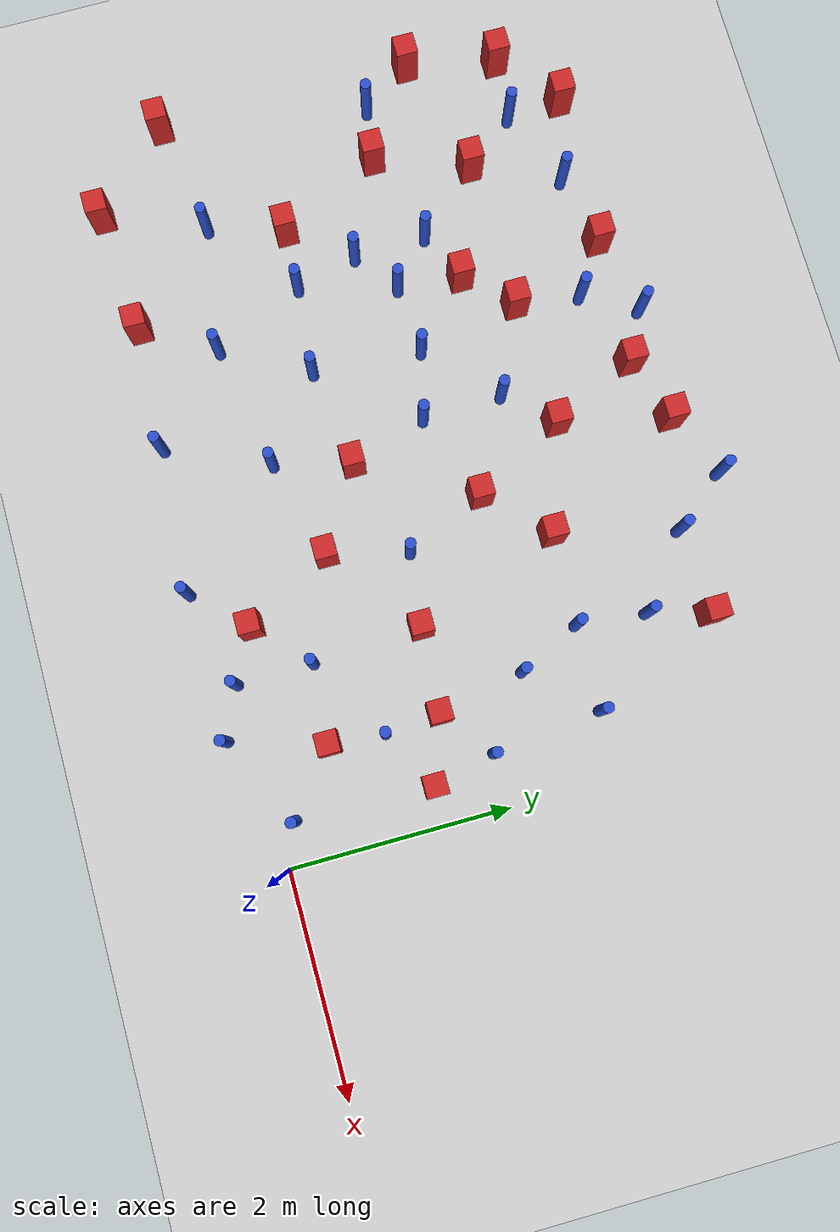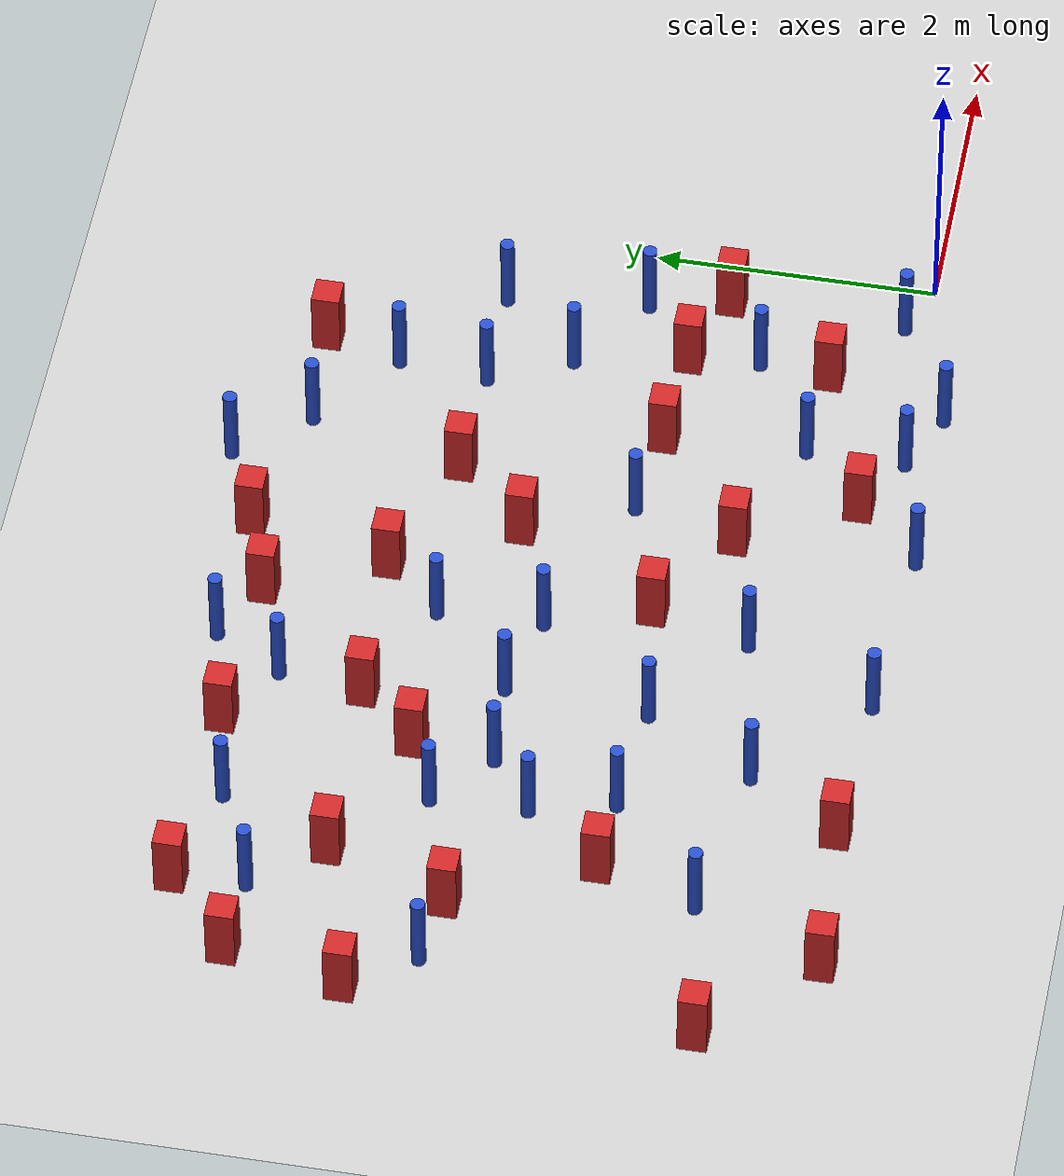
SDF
<sdf version="1.6">
 <world name="default">
  <model name="ground_plane">
   <static>1</static>
   <link name="link">
    <collision name="collision">
     <geometry><plane><normal>0 0 1</normal><size>100 100</size></plane></geometry>
     <surface><friction><ode><mu>100</mu><mu2>50</mu2></ode></friction></surface>
    </collision>
    <visual name="visual">
     <cast_shadows>0</cast_shadows>
     <geometry><plane><normal>0 0 1</normal><size>100 100</size></plane></geometry>
     <material>
      <ambient>1.0 1.0 1.0 1.0</ambient>
      <diffuse>0.8 0.8 0.8 1.0</diffuse>
      <specular>0.01 0.01 0.01 1.000000</specular>
     </material>
    </visual>
   </link>
  </model>
  <model name="square_post_obstacle4">
   <static>true</static>
   <pose>-6.11988198631 2.40066412992 8.22691968438e-08 7.2212513382e-06 -7.54495500217e-07 2.29674213826e-05</pose>
   <link name="link">
    <pose>0 0 0.25 0 -0 0</pose>
    <inertial>
     <mass>100</mass>
     <inertia>
      <ixx>0.166667</ixx>
      <ixy>0</ixy>
      <ixz>0</ixz>
      <iyy>0.166667</iyy>
      <iyz>0</iyz>
      <izz>0.166667</izz>
     </inertia>
    </inertial>
    <collision name="collision"><geometry><box><size>.2 .2 .5</size></box></geometry></collision>
    <visual name="visual">
     <geometry><box><size>.2 .2 .5</size></box></geometry>
     <material>
      <script><name>Gazebo/Red</name><uri>file://media/materials/scripts/gazebo.material</uri></script>
     </material>
    </visual>
   </link>
  </model>
  <model name="pole_obstacle4">
   <static>true</static>
   <pose>-1.11285080218 2.41253646626 2.88873142074e-08 -9.90536689791e-09 4.6021994899e-07 -1.20965994959e-07</pose>
   <link name="link">
    <pose>0 0 0.3 0 -0 0</pose>
    <inertial>
     <mass>1</mass>
     <inertia><ixx>0.145833</ixx><ixy>0</ixy><ixz>0</ixz><iyy>0.145833</iyy><iyz>0</iyz><izz>0.125</izz></inertia>
    </inertial>
    <collision name="collision">
     <geometry><cylinder><radius>0.05</radius><length>.6</length></cylinder></geometry>
    </collision>
    <visual name="visual">
     <geometry><cylinder><radius>0.05</radius><length>.6</length></cylinder></geometry>
     <material>
      <script><name>Gazebo/Blue</name><uri>file://media/materials/scripts/gazebo.material</uri></script>
     </material>
    </visual>
   </link>
  </model>
  <model name="square_post_obstacle13">
   <static>true</static>
   <pose>-6.22304500076 -0.177315337008 8.22691968438e-08 7.2212513382e-06 -7.54495500217e-07 2.29674213826e-05</pose>
   <link name="link">
    <pose>0 0 0.25 0 -0 0</pose>
    <inertial>
     <mass>100</mass>
     <inertia>
      <ixx>0.166667</ixx>
      <ixy>0</ixy>
      <ixz>0</ixz>
      <iyy>0.166667</iyy>
      <iyz>0</iyz>
      <izz>0.166667</izz>
     </inertia>
    </inertial>
    <collision name="collision"><geometry><box><size>.2 .2 .5</size></box></geometry></collision>
    <visual name="visual">
     <geometry><box><size>.2 .2 .5</size></box></geometry>
     <material>
      <script><name>Gazebo/Red</name><uri>file://media/materials/scripts/gazebo.material</uri></script>
     </material>
    </visual>
   </link>
  </model>
  <model name="pole_obstacle9">
   <static>true</static>
   <pose>-1.67176897016 0.657814123121 2.88873142074e-08 -9.90536689692e-09 4.60219948993e-07 -1.20965994958e-07</pose>
   <link name="link">
    <pose>0 0 0.3 0 -0 0</pose>
    <inertial>
     <mass>1</mass>
     <inertia><ixx>0.145833</ixx><ixy>0</ixy><ixz>0</ixz><iyy>0.145833</iyy><iyz>0</iyz><izz>0.125</izz></inertia>
    </inertial>
    <collision name="collision">
     <geometry><cylinder><radius>0.05</radius><length>.6</length></cylinder></geometry>
    </collision>
    <visual name="visual">
     <geometry><cylinder><radius>0.05</radius><length>.6</length></cylinder></geometry>
     <material>
      <script><name>Gazebo/Blue</name><uri>file://media/materials/scripts/gazebo.material</uri></script>
     </material>
    </visual>
   </link>
  </model>
  <model name="pole_obstacle12">
   <static>true</static>
   <pose>-0.907290829122 1.1120507085 2.88873142074e-08 -9.90536689855e-09 4.60219948989e-07 -1.20965994962e-07</pose>
   <link name="link">
    <pose>0 0 0.3 0 -0 0</pose>
    <inertial>
     <mass>1</mass>
     <inertia><ixx>0.145833</ixx><ixy>0</ixy><ixz>0</ixz><iyy>0.145833</iyy><iyz>0</iyz><izz>0.125</izz></inertia>
    </inertial>
    <collision name="collision">
     <geometry><cylinder><radius>0.05</radius><length>.6</length></cylinder></geometry>
    </collision>
    <visual name="visual">
     <geometry><cylinder><radius>0.05</radius><length>.6</length></cylinder></geometry>
     <material>
      <script><name>Gazebo/Blue</name><uri>file://media/materials/scripts/gazebo.material</uri></script>
     </material>
    </visual>
   </link>
  </model>
  <model name="pole_obstacle15">
   <static>true</static>
   <pose>-6.18658742301 3.74854576818 2.88873142074e-08 -9.90536690245e-09 4.6021994898e-07 -1.20965994966e-07</pose>
   <link name="link">
    <pose>0 0 0.3 0 -0 0</pose>
    <inertial>
     <mass>1</mass>
     <inertia><ixx>0.145833</ixx><ixy>0</ixy><ixz>0</ixz><iyy>0.145833</iyy><iyz>0</iyz><izz>0.125</izz></inertia>
    </inertial>
    <collision name="collision">
     <geometry><cylinder><radius>0.05</radius><length>.6</length></cylinder></geometry>
    </collision>
    <visual name="visual">
     <geometry><cylinder><radius>0.05</radius><length>.6</length></cylinder></geometry>
     <material>
      <script><name>Gazebo/Blue</name><uri>file://media/materials/scripts/gazebo.material</uri></script>
     </material>
    </visual>
   </link>
  </model>
  <model name="pole_obstacle23">
   <static>true</static>
   <pose>-4.67680809581 0.555590162463 2.88873142074e-08 -9.90536689837e-09 4.60219948989e-07 -1.2096599496e-07</pose>
   <link name="link">
    <pose>0 0 0.3 0 -0 0</pose>
    <inertial>
     <mass>1</mass>
     <inertia><ixx>0.145833</ixx><ixy>0</ixy><ixz>0</ixz><iyy>0.145833</iyy><iyz>0</iyz><izz>0.125</izz></inertia>
    </inertial>
    <collision name="collision">
     <geometry><cylinder><radius>0.05</radius><length>.6</length></cylinder></geometry>
    </collision>
    <visual name="visual">
     <geometry><cylinder><radius>0.05</radius><length>.6</length></cylinder></geometry>
     <material>
      <script><name>Gazebo/Blue</name><uri>file://media/materials/scripts/gazebo.material</uri></script>
     </material>
    </visual>
   </link>
  </model>
  <model name="pole_obstacle25">
   <static>true</static>
   <pose>-0.604797885912 2.98127101878 2.88873142074e-08 -9.90536689636e-09 4.60219948994e-07 -1.20965994958e-07</pose>
   <link name="link">
    <pose>0 0 0.3 0 -0 0</pose>
    <inertial>
     <mass>1</mass>
     <inertia><ixx>0.145833</ixx><ixy>0</ixy><ixz>0</ixz><iyy>0.145833</iyy><iyz>0</iyz><izz>0.125</izz></inertia>
    </inertial>
    <collision name="collision">
     <geometry><cylinder><radius>0.05</radius><length>.6</length></cylinder></geometry>
    </collision>
    <visual name="visual">
     <geometry><cylinder><radius>0.05</radius><length>.6</length></cylinder></geometry>
     <material>
      <script><name>Gazebo/Blue</name><uri>file://media/materials/scripts/gazebo.material</uri></script>
     </material>
    </visual>
   </link>
  </model>
  <model name="pole_obstacle32">
   <static>true</static>
   <pose>-2.5596887049 -0.253611967014 2.88873142074e-08 -9.90536692022e-09 4.60219948938e-07 -1.20965994984e-07</pose>
   <link name="link">
    <pose>0 0 0.3 0 -0 0</pose>
    <inertial>
     <mass>1</mass>
     <inertia><ixx>0.145833</ixx><ixy>0</ixy><ixz>0</ixz><iyy>0.145833</iyy><iyz>0</iyz><izz>0.125</izz></inertia>
    </inertial>
    <collision name="collision">
     <geometry><cylinder><radius>0.05</radius><length>.6</length></cylinder></geometry>
    </collision>
    <visual name="visual">
     <geometry><cylinder><radius>0.05</radius><length>.6</length></cylinder></geometry>
     <material>
      <script><name>Gazebo/Blue</name><uri>file://media/materials/scripts/gazebo.material</uri></script>
     </material>
    </visual>
   </link>
  </model>
  <model name="pole_obstacle33">
   <static>true</static>
   <pose>-4.82542862277 2.29827292195 2.88873142074e-08 -9.90536690245e-09 4.6021994898e-07 -1.20965994966e-07</pose>
   <link name="link">
    <pose>0 0 0.3 0 -0 0</pose>
    <inertial>
     <mass>1</mass>
     <inertia><ixx>0.145833</ixx><ixy>0</ixy><ixz>0</ixz><iyy>0.145833</iyy><iyz>0</iyz><izz>0.125</izz></inertia>
    </inertial>
    <collision name="collision">
     <geometry><cylinder><radius>0.05</radius><length>.6</length></cylinder></geometry>
    </collision>
    <visual name="visual">
     <geometry><cylinder><radius>0.05</radius><length>.6</length></cylinder></geometry>
     <material>
      <script><name>Gazebo/Blue</name><uri>file://media/materials/scripts/gazebo.material</uri></script>
     </material>
    </visual>
   </link>
  </model>
  <model name="square_post_obstacle35">
   <static>true</static>
   <pose>-4.78033726926 2.87956530869 8.22691968438e-08 7.2212513382e-06 -7.54495500217e-07 2.29674213826e-05</pose>
   <link name="link">
    <pose>0 0 0.25 0 -0 0</pose>
    <inertial>
     <mass>100</mass>
     <inertia>
      <ixx>0.166667</ixx>
      <ixy>0</ixy>
      <ixz>0</ixz>
      <iyy>0.166667</iyy>
      <iyz>0</iyz>
      <izz>0.166667</izz>
     </inertia>
    </inertial>
    <collision name="collision"><geometry><box><size>.2 .2 .5</size></box></geometry></collision>
    <visual name="visual">
     <geometry><box><size>.2 .2 .5</size></box></geometry>
     <material>
      <script><name>Gazebo/Red</name><uri>file://media/materials/scripts/gazebo.material</uri></script>
     </material>
    </visual>
   </link>
  </model>
  <model name="pole_obstacle42">
   <static>true</static>
   <pose>-3.58616309249 2.93079925929 2.88873142074e-08 -9.90536689597e-09 4.60219948995e-07 -1.20965994957e-07</pose>
   <link name="link">
    <pose>0 0 0.3 0 -0 0</pose>
    <inertial>
     <mass>1</mass>
     <inertia><ixx>0.145833</ixx><ixy>0</ixy><ixz>0</ixz><iyy>0.145833</iyy><iyz>0</iyz><izz>0.125</izz></inertia>
    </inertial>
    <collision name="collision">
     <geometry><cylinder><radius>0.05</radius><length>.6</length></cylinder></geometry>
    </collision>
    <visual name="visual">
     <geometry><cylinder><radius>0.05</radius><length>.6</length></cylinder></geometry>
     <material>
      <script><name>Gazebo/Blue</name><uri>file://media/materials/scripts/gazebo.material</uri></script>
     </material>
    </visual>
   </link>
  </model>
  <model name="square_post_obstacle43">
   <static>true</static>
   <pose>-2.59165380319 1.01698078528 8.22691968438e-08 7.2212513382e-06 -7.54495500217e-07 2.29674213826e-05</pose>
   <link name="link">
    <pose>0 0 0.25 0 -0 0</pose>
    <inertial>
     <mass>100</mass>
     <inertia>
      <ixx>0.166667</ixx>
      <ixy>0</ixy>
      <ixz>0</ixz>
      <iyy>0.166667</iyy>
      <iyz>0</iyz>
      <izz>0.166667</izz>
     </inertia>
    </inertial>
    <collision name="collision"><geometry><box><size>.2 .2 .5</size></box></geometry></collision>
    <visual name="visual">
     <geometry><box><size>.2 .2 .5</size></box></geometry>
     <material>
      <script><name>Gazebo/Red</name><uri>file://media/materials/scripts/gazebo.material</uri></script>
     </material>
    </visual>
   </link>
  </model>
  <model name="pole_obstacle47">
   <static>true</static>
   <pose>-3.50604612175 0.763758230596 2.88873142074e-08 -9.90536689285e-09 4.60219949002e-07 -1.20965994953e-07</pose>
   <link name="link">
    <pose>0 0 0.3 0 -0 0</pose>
    <inertial>
     <mass>1</mass>
     <inertia><ixx>0.145833</ixx><ixy>0</ixy><ixz>0</ixz><iyy>0.145833</iyy><iyz>0</iyz><izz>0.125</izz></inertia>
    </inertial>
    <collision name="collision">
     <geometry><cylinder><radius>0.05</radius><length>.6</length></cylinder></geometry>
    </collision>
    <visual name="visual">
     <geometry><cylinder><radius>0.05</radius><length>.6</length></cylinder></geometry>
     <material>
      <script><name>Gazebo/Blue</name><uri>file://media/materials/scripts/gazebo.material</uri></script>
     </material>
    </visual>
   </link>
  </model>
  <model name="square_post_obstacle51">
   <static>true</static>
   <pose>-2.13622421256 0.21127868371 8.22691968438e-08 7.2212513382e-06 -7.54495500217e-07 2.29674213826e-05</pose>
   <link name="link">
    <pose>0 0 0.25 0 -0 0</pose>
    <inertial>
     <mass>100</mass>
     <inertia>
      <ixx>0.166667</ixx>
      <ixy>0</ixy>
      <ixz>0</ixz>
      <iyy>0.166667</iyy>
      <iyz>0</iyz>
      <izz>0.166667</izz>
     </inertia>
    </inertial>
    <collision name="collision"><geometry><box><size>.2 .2 .5</size></box></geometry></collision>
    <visual name="visual">
     <geometry><box><size>.2 .2 .5</size></box></geometry>
     <material>
      <script><name>Gazebo/Red</name><uri>file://media/materials/scripts/gazebo.material</uri></script>
     </material>
    </visual>
   </link>
  </model>
  <model name="square_post_obstacle54">
   <static>true</static>
   <pose>-3.59385499015 4.14736343509 8.22691968438e-08 7.2212513382e-06 -7.54495500217e-07 2.29674213826e-05</pose>
   <link name="link">
    <pose>0 0 0.25 0 -0 0</pose>
    <inertial>
     <mass>100</mass>
     <inertia>
      <ixx>0.166667</ixx>
      <ixy>0</ixy>
      <ixz>0</ixz>
      <iyy>0.166667</iyy>
      <iyz>0</iyz>
      <izz>0.166667</izz>
     </inertia>
    </inertial>
    <collision name="collision"><geometry><box><size>.2 .2 .5</size></box></geometry></collision>
    <visual name="visual">
     <geometry><box><size>.2 .2 .5</size></box></geometry>
     <material>
      <script><name>Gazebo/Red</name><uri>file://media/materials/scripts/gazebo.material</uri></script>
     </material>
    </visual>
   </link>
  </model>
  <model name="square_post_obstacle64">
   <static>true</static>
   <pose>-1.18157547276 4.16491757704 8.22691968438e-08 7.2212513382e-06 -7.54495500217e-07 2.29674213826e-05</pose>
   <link name="link">
    <pose>0 0 0.25 0 -0 0</pose>
    <inertial>
     <mass>100</mass>
     <inertia>
      <ixx>0.166667</ixx>
      <ixy>0</ixy>
      <ixz>0</ixz>
      <iyy>0.166667</iyy>
      <iyz>0</iyz>
      <izz>0.166667</izz>
     </inertia>
    </inertial>
    <collision name="collision"><geometry><box><size>.2 .2 .5</size></box></geometry></collision>
    <visual name="visual">
     <geometry><box><size>.2 .2 .5</size></box></geometry>
     <material>
      <script><name>Gazebo/Red</name><uri>file://media/materials/scripts/gazebo.material</uri></script>
     </material>
    </visual>
   </link>
  </model>
  <model name="pole_obstacle64">
   <static>true</static>
   <pose>-5.45129892534 4.05668576479 2.88873142074e-08 -9.90536690842e-09 4.60219948965e-07 -1.20965994976e-07</pose>
   <link name="link">
    <pose>0 0 0.3 0 -0 0</pose>
    <inertial>
     <mass>1</mass>
     <inertia><ixx>0.145833</ixx><ixy>0</ixy><ixz>0</ixz><iyy>0.145833</iyy><iyz>0</iyz><izz>0.125</izz></inertia>
    </inertial>
    <collision name="collision">
     <geometry><cylinder><radius>0.05</radius><length>.6</length></cylinder></geometry>
    </collision>
    <visual name="visual">
     <geometry><cylinder><radius>0.05</radius><length>.6</length></cylinder></geometry>
     <material>
      <script><name>Gazebo/Blue</name><uri>file://media/materials/scripts/gazebo.material</uri></script>
     </material>
    </visual>
   </link>
  </model>
  <model name="square_post_obstacle72">
   <static>true</static>
   <pose>-6.94956865934 0.557874662591 8.22691968438e-08 7.2212513382e-06 -7.54495500217e-07 2.29674213826e-05</pose>
   <link name="link">
    <pose>0 0 0.25 0 -0 0</pose>
    <inertial>
     <mass>100</mass>
     <inertia>
      <ixx>0.166667</ixx>
      <ixy>0</ixy>
      <ixz>0</ixz>
      <iyy>0.166667</iyy>
      <iyz>0</iyz>
      <izz>0.166667</izz>
     </inertia>
    </inertial>
    <collision name="collision"><geometry><box><size>.2 .2 .5</size></box></geometry></collision>
    <visual name="visual">
     <geometry><box><size>.2 .2 .5</size></box></geometry>
     <material>
      <script><name>Gazebo/Red</name><uri>file://media/materials/scripts/gazebo.material</uri></script>
     </material>
    </visual>
   </link>
  </model>
  <model name="square_post_obstacle75">
   <static>true</static>
   <pose>-1.73539912772 1.65769515468 8.22691968438e-08 7.2212513382e-06 -7.54495500217e-07 2.29674213826e-05</pose>
   <link name="link">
    <pose>0 0 0.25 0 -0 0</pose>
    <inertial>
     <mass>100</mass>
     <inertia>
      <ixx>0.166667</ixx>
      <ixy>0</ixy>
      <ixz>0</ixz>
      <iyy>0.166667</iyy>
      <iyz>0</iyz>
      <izz>0.166667</izz>
     </inertia>
    </inertial>
    <collision name="collision"><geometry><box><size>.2 .2 .5</size></box></geometry></collision>
    <visual name="visual">
     <geometry><box><size>.2 .2 .5</size></box></geometry>
     <material>
      <script><name>Gazebo/Red</name><uri>file://media/materials/scripts/gazebo.material</uri></script>
     </material>
    </visual>
   </link>
  </model>
  <model name="pole_obstacle70">
   <static>true</static>
   <pose>-1.32333191586 3.62391716327 2.88873142074e-08 -9.90536689791e-09 4.6021994899e-07 -1.20965994959e-07</pose>
   <link name="link">
    <pose>0 0 0.3 0 -0 0</pose>
    <inertial>
     <mass>1</mass>
     <inertia><ixx>0.145833</ixx><ixy>0</ixy><ixz>0</ixz><iyy>0.145833</iyy><iyz>0</iyz><izz>0.125</izz></inertia>
    </inertial>
    <collision name="collision">
     <geometry><cylinder><radius>0.05</radius><length>.6</length></cylinder></geometry>
    </collision>
    <visual name="visual">
     <geometry><cylinder><radius>0.05</radius><length>.6</length></cylinder></geometry>
     <material>
      <script><name>Gazebo/Blue</name><uri>file://media/materials/scripts/gazebo.material</uri></script>
     </material>
    </visual>
   </link>
  </model>
  <model name="pole_obstacle81">
   <static>true</static>
   <pose>-3.55907121232 2.18631689489 2.88873142074e-08 -9.90536689597e-09 4.60219948995e-07 -1.20965994957e-07</pose>
   <link name="link">
    <pose>0 0 0.3 0 -0 0</pose>
    <inertial>
     <mass>1</mass>
     <inertia><ixx>0.145833</ixx><ixy>0</ixy><ixz>0</ixz><iyy>0.145833</iyy><iyz>0</iyz><izz>0.125</izz></inertia>
    </inertial>
    <collision name="collision">
     <geometry><cylinder><radius>0.05</radius><length>.6</length></cylinder></geometry>
    </collision>
    <visual name="visual">
     <geometry><cylinder><radius>0.05</radius><length>.6</length></cylinder></geometry>
     <material>
      <script><name>Gazebo/Blue</name><uri>file://media/materials/scripts/gazebo.material</uri></script>
     </material>
    </visual>
   </link>
  </model>
  <model name="square_post_obstacle80">
   <static>true</static>
   <pose>-6.95029578338 2.94776816849 8.22691968438e-08 7.2212513382e-06 -7.54495500217e-07 2.29674213826e-05</pose>
   <link name="link">
    <pose>0 0 0.25 0 -0 0</pose>
    <inertial>
     <mass>100</mass>
     <inertia>
      <ixx>0.166667</ixx>
      <ixy>0</ixy>
      <ixz>0</ixz>
      <iyy>0.166667</iyy>
      <iyz>0</iyz>
      <izz>0.166667</izz>
     </inertia>
    </inertial>
    <collision name="collision"><geometry><box><size>.2 .2 .5</size></box></geometry></collision>
    <visual name="visual">
     <geometry><box><size>.2 .2 .5</size></box></geometry>
     <material>
      <script><name>Gazebo/Red</name><uri>file://media/materials/scripts/gazebo.material</uri></script>
     </material>
    </visual>
   </link>
  </model>
  <model name="pole_obstacle87">
   <static>true</static>
   <pose>-5.24283808344 2.66956436762 2.88873142074e-08 -9.90536690245e-09 4.6021994898e-07 -1.20965994966e-07</pose>
   <link name="link">
    <pose>0 0 0.3 0 -0 0</pose>
    <inertial>
     <mass>1</mass>
     <inertia><ixx>0.145833</ixx><ixy>0</ixy><ixz>0</ixz><iyy>0.145833</iyy><iyz>0</iyz><izz>0.125</izz></inertia>
    </inertial>
    <collision name="collision">
     <geometry><cylinder><radius>0.05</radius><length>.6</length></cylinder></geometry>
    </collision>
    <visual name="visual">
     <geometry><cylinder><radius>0.05</radius><length>.6</length></cylinder></geometry>
     <material>
      <script><name>Gazebo/Blue</name><uri>file://media/materials/scripts/gazebo.material</uri></script>
     </material>
    </visual>
   </link>
  </model>
  <model name="pole_obstacle98">
   <static>true</static>
   <pose>-1.96305457123 4.12169609784 2.88873142074e-08 -9.90536689721e-09 4.60219948992e-07 -1.20965994958e-07</pose>
   <link name="link">
    <pose>0 0 0.3 0 -0 0</pose>
    <inertial>
     <mass>1</mass>
     <inertia><ixx>0.145833</ixx><ixy>0</ixy><ixz>0</ixz><iyy>0.145833</iyy><iyz>0</iyz><izz>0.125</izz></inertia>
    </inertial>
    <collision name="collision">
     <geometry><cylinder><radius>0.05</radius><length>.6</length></cylinder></geometry>
    </collision>
    <visual name="visual">
     <geometry><cylinder><radius>0.05</radius><length>.6</length></cylinder></geometry>
     <material>
      <script><name>Gazebo/Blue</name><uri>file://media/materials/scripts/gazebo.material</uri></script>
     </material>
    </visual>
   </link>
  </model>
  <model name="pole_obstacle99">
   <static>true</static>
   <pose>-0.391172334253 0.158182697802 2.88873142074e-08 -9.90536690071e-09 4.60219948984e-07 -1.20965994964e-07</pose>
   <link name="link">
    <pose>0 0 0.3 0 -0 0</pose>
    <inertial>
     <mass>1</mass>
     <inertia><ixx>0.145833</ixx><ixy>0</ixy><ixz>0</ixz><iyy>0.145833</iyy><iyz>0</iyz><izz>0.125</izz></inertia>
    </inertial>
    <collision name="collision">
     <geometry><cylinder><radius>0.05</radius><length>.6</length></cylinder></geometry>
    </collision>
    <visual name="visual">
     <geometry><cylinder><radius>0.05</radius><length>.6</length></cylinder></geometry>
     <material>
      <script><name>Gazebo/Blue</name><uri>file://media/materials/scripts/gazebo.material</uri></script>
     </material>
    </visual>
   </link>
  </model>
  <model name="square_post_obstacle90">
   <static>true</static>
   <pose>-6.77682605143 3.78342824016 8.22691968438e-08 7.2212513382e-06 -7.54495500217e-07 2.29674213826e-05</pose>
   <link name="link">
    <pose>0 0 0.25 0 -0 0</pose>
    <inertial>
     <mass>100</mass>
     <inertia>
      <ixx>0.166667</ixx>
      <ixy>0</ixy>
      <ixz>0</ixz>
      <iyy>0.166667</iyy>
      <iyz>0</iyz>
      <izz>0.166667</izz>
     </inertia>
    </inertial>
    <collision name="collision"><geometry><box><size>.2 .2 .5</size></box></geometry></collision>
    <visual name="visual">
     <geometry><box><size>.2 .2 .5</size></box></geometry>
     <material>
      <script><name>Gazebo/Red</name><uri>file://media/materials/scripts/gazebo.material</uri></script>
     </material>
    </visual>
   </link>
  </model>
  <model name="square_post_obstacle94">
   <static>true</static>
   <pose>-0.368737485868 1.40508767938 8.22691968438e-08 7.2212513382e-06 -7.54495500217e-07 2.29674213826e-05</pose>
   <link name="link">
    <pose>0 0 0.25 0 -0 0</pose>
    <inertial>
     <mass>100</mass>
     <inertia>
      <ixx>0.166667</ixx>
      <ixy>0</ixy>
      <ixz>0</ixz>
      <iyy>0.166667</iyy>
      <iyz>0</iyz>
      <izz>0.166667</izz>
     </inertia>
    </inertial>
    <collision name="collision"><geometry><box><size>.2 .2 .5</size></box></geometry></collision>
    <visual name="visual">
     <geometry><box><size>.2 .2 .5</size></box></geometry>
     <material>
      <script><name>Gazebo/Red</name><uri>file://media/materials/scripts/gazebo.material</uri></script>
     </material>
    </visual>
   </link>
  </model>
  <model name="pole_obstacle109">
   <static>true</static>
   <pose>-3.90983992658 -0.162694855327 2.88873142074e-08 -9.90536689156e-09 4.60219949005e-07 -1.20965994951e-07</pose>
   <link name="link">
    <pose>0 0 0.3 0 -0 0</pose>
    <inertial>
     <mass>1</mass>
     <inertia><ixx>0.145833</ixx><ixy>0</ixy><ixz>0</ixz><iyy>0.145833</iyy><iyz>0</iyz><izz>0.125</izz></inertia>
    </inertial>
    <collision name="collision">
     <geometry><cylinder><radius>0.05</radius><length>.6</length></cylinder></geometry>
    </collision>
    <visual name="visual">
     <geometry><cylinder><radius>0.05</radius><length>.6</length></cylinder></geometry>
     <material>
      <script><name>Gazebo/Blue</name><uri>file://media/materials/scripts/gazebo.material</uri></script>
     </material>
    </visual>
   </link>
  </model>
  <model name="square_post_obstacle99">
   <static>true</static>
   <pose>-2.99242653724 4.34742113566 8.22691968438e-08 7.2212513382e-06 -7.54495500217e-07 2.29674213826e-05</pose>
   <link name="link">
    <pose>0 0 0.25 0 -0 0</pose>
    <inertial>
     <mass>100</mass>
     <inertia>
      <ixx>0.166667</ixx>
      <ixy>0</ixy>
      <ixz>0</ixz>
      <iyy>0.166667</iyy>
      <iyz>0</iyz>
      <izz>0.166667</izz>
     </inertia>
    </inertial>
    <collision name="collision"><geometry><box><size>.2 .2 .5</size></box></geometry></collision>
    <visual name="visual">
     <geometry><box><size>.2 .2 .5</size></box></geometry>
     <material>
      <script><name>Gazebo/Red</name><uri>file://media/materials/scripts/gazebo.material</uri></script>
     </material>
    </visual>
   </link>
  </model>
  <model name="pole_obstacle114">
   <static>true</static>
   <pose>-4.18609464159 2.34292907376 2.88873142074e-08 -9.90536690245e-09 4.6021994898e-07 -1.20965994966e-07</pose>
   <link name="link">
    <pose>0 0 0.3 0 -0 0</pose>
    <inertial>
     <mass>1</mass>
     <inertia><ixx>0.145833</ixx><ixy>0</ixy><ixz>0</ixz><iyy>0.145833</iyy><iyz>0</iyz><izz>0.125</izz></inertia>
    </inertial>
    <collision name="collision">
     <geometry><cylinder><radius>0.05</radius><length>.6</length></cylinder></geometry>
    </collision>
    <visual name="visual">
     <geometry><cylinder><radius>0.05</radius><length>.6</length></cylinder></geometry>
     <material>
      <script><name>Gazebo/Blue</name><uri>file://media/materials/scripts/gazebo.material</uri></script>
     </material>
    </visual>
   </link>
  </model>
  <model name="square_post_obstacle107">
   <static>true</static>
   <pose>-5.80575239101 3.25947990049 8.22691968438e-08 7.2212513382e-06 -7.54495500217e-07 2.29674213826e-05</pose>
   <link name="link">
    <pose>0 0 0.25 0 -0 0</pose>
    <inertial>
     <mass>100</mass>
     <inertia>
      <ixx>0.166667</ixx>
      <ixy>0</ixy>
      <ixz>0</ixz>
      <iyy>0.166667</iyy>
      <iyz>0</iyz>
      <izz>0.166667</izz>
     </inertia>
    </inertial>
    <collision name="collision"><geometry><box><size>.2 .2 .5</size></box></geometry></collision>
    <visual name="visual">
     <geometry><box><size>.2 .2 .5</size></box></geometry>
     <material>
      <script><name>Gazebo/Red</name><uri>file://media/materials/scripts/gazebo.material</uri></script>
     </material>
    </visual>
   </link>
  </model>
  <model name="pole_obstacle119">
   <static>true</static>
   <pose>-5.07123430272 1.40794113802 2.88873142074e-08 -9.90536689445e-09 4.60219948999e-07 -1.20965994956e-07</pose>
   <link name="link">
    <pose>0 0 0.3 0 -0 0</pose>
    <inertial>
     <mass>1</mass>
     <inertia><ixx>0.145833</ixx><ixy>0</ixy><ixz>0</ixz><iyy>0.145833</iyy><iyz>0</iyz><izz>0.125</izz></inertia>
    </inertial>
    <collision name="collision">
     <geometry><cylinder><radius>0.05</radius><length>.6</length></cylinder></geometry>
    </collision>
    <visual name="visual">
     <geometry><cylinder><radius>0.05</radius><length>.6</length></cylinder></geometry>
     <material>
      <script><name>Gazebo/Blue</name><uri>file://media/materials/scripts/gazebo.material</uri></script>
     </material>
    </visual>
   </link>
  </model>
  <model name="pole_obstacle128">
   <static>true</static>
   <pose>-5.85625923293 0.738898884176 2.88873142074e-08 -9.90536689837e-09 4.60219948989e-07 -1.2096599496e-07</pose>
   <link name="link">
    <pose>0 0 0.3 0 -0 0</pose>
    <inertial>
     <mass>1</mass>
     <inertia><ixx>0.145833</ixx><ixy>0</ixy><ixz>0</ixz><iyy>0.145833</iyy><iyz>0</iyz><izz>0.125</izz></inertia>
    </inertial>
    <collision name="collision">
     <geometry><cylinder><radius>0.05</radius><length>.6</length></cylinder></geometry>
    </collision>
    <visual name="visual">
     <geometry><cylinder><radius>0.05</radius><length>.6</length></cylinder></geometry>
     <material>
      <script><name>Gazebo/Blue</name><uri>file://media/materials/scripts/gazebo.material</uri></script>
     </material>
    </visual>
   </link>
  </model>
  <model name="pole_obstacle130">
   <static>true</static>
   <pose>-2.37272539577 4.62248504066 2.88873142074e-08 -9.90536689859e-09 4.60219948989e-07 -1.20965994961e-07</pose>
   <link name="link">
    <pose>0 0 0.3 0 -0 0</pose>
    <inertial>
     <mass>1</mass>
     <inertia><ixx>0.145833</ixx><ixy>0</ixy><ixz>0</ixz><iyy>0.145833</iyy><iyz>0</iyz><izz>0.125</izz></inertia>
    </inertial>
    <collision name="collision">
     <geometry><cylinder><radius>0.05</radius><length>.6</length></cylinder></geometry>
    </collision>
    <visual name="visual">
     <geometry><cylinder><radius>0.05</radius><length>.6</length></cylinder></geometry>
     <material>
      <script><name>Gazebo/Blue</name><uri>file://media/materials/scripts/gazebo.material</uri></script>
     </material>
    </visual>
   </link>
  </model>
  <model name="pole_obstacle132">
   <static>true</static>
   <pose>-4.25071412401 1.33288958389 2.88873142074e-08 -9.90536689445e-09 4.60219948999e-07 -1.20965994956e-07</pose>
   <link name="link">
    <pose>0 0 0.3 0 -0 0</pose>
    <inertial>
     <mass>1</mass>
     <inertia><ixx>0.145833</ixx><ixy>0</ixy><ixz>0</ixz><iyy>0.145833</iyy><iyz>0</iyz><izz>0.125</izz></inertia>
    </inertial>
    <collision name="collision">
     <geometry><cylinder><radius>0.05</radius><length>.6</length></cylinder></geometry>
    </collision>
    <visual name="visual">
     <geometry><cylinder><radius>0.05</radius><length>.6</length></cylinder></geometry>
     <material>
      <script><name>Gazebo/Blue</name><uri>file://media/materials/scripts/gazebo.material</uri></script>
     </material>
    </visual>
   </link>
  </model>
  <model name="square_post_obstacle115">
   <static>true</static>
   <pose>-5.07705959941 -0.0966190359859 8.22691968438e-08 7.2212513382e-06 -7.54495500217e-07 2.29674213826e-05</pose>
   <link name="link">
    <pose>0 0 0.25 0 -0 0</pose>
    <inertial>
     <mass>100</mass>
     <inertia>
      <ixx>0.166667</ixx>
      <ixy>0</ixy>
      <ixz>0</ixz>
      <iyy>0.166667</iyy>
      <iyz>0</iyz>
      <izz>0.166667</izz>
     </inertia>
    </inertial>
    <collision name="collision"><geometry><box><size>.2 .2 .5</size></box></geometry></collision>
    <visual name="visual">
     <geometry><box><size>.2 .2 .5</size></box></geometry>
     <material>
      <script><name>Gazebo/Red</name><uri>file://media/materials/scripts/gazebo.material</uri></script>
     </material>
    </visual>
   </link>
  </model>
  <model name="square_post_obstacle121">
   <static>true</static>
   <pose>-5.64417071089 1.43953596998 8.22691968438e-08 7.2212513382e-06 -7.54495500217e-07 2.29674213826e-05</pose>
   <link name="link">
    <pose>0 0 0.25 0 -0 0</pose>
    <inertial>
     <mass>100</mass>
     <inertia>
      <ixx>0.166667</ixx>
      <ixy>0</ixy>
      <ixz>0</ixz>
      <iyy>0.166667</iyy>
      <iyz>0</iyz>
      <izz>0.166667</izz>
     </inertia>
    </inertial>
    <collision name="collision"><geometry><box><size>.2 .2 .5</size></box></geometry></collision>
    <visual name="visual">
     <geometry><box><size>.2 .2 .5</size></box></geometry>
     <material>
      <script><name>Gazebo/Red</name><uri>file://media/materials/scripts/gazebo.material</uri></script>
     </material>
    </visual>
   </link>
  </model>
  <model name="square_post_obstacle128">
   <static>true</static>
   <pose>-4.78860691084 4.20008047524 8.22691968438e-08 7.22125133819e-06 -7.54495500217e-07 2.29674213826e-05</pose>
   <link name="link">
    <pose>0 0 0.25 0 -0 0</pose>
    <inertial>
     <mass>100</mass>
     <inertia>
      <ixx>0.166667</ixx>
      <ixy>0</ixy>
      <ixz>0</ixz>
      <iyy>0.166667</iyy>
      <iyz>0</iyz>
      <izz>0.166667</izz>
     </inertia>
    </inertial>
    <collision name="collision"><geometry><box><size>.2 .2 .5</size></box></geometry></collision>
    <visual name="visual">
     <geometry><box><size>.2 .2 .5</size></box></geometry>
     <material>
      <script><name>Gazebo/Red</name><uri>file://media/materials/scripts/gazebo.material</uri></script>
     </material>
    </visual>
   </link>
  </model>
  <model name="pole_obstacle153">
   <static>true</static>
   <pose>-1.66948319904 -0.0402380460417 2.88873142074e-08 -9.90536689813e-09 4.6021994899e-07 -1.20965994959e-07</pose>
   <link name="link">
    <pose>0 0 0.3 0 -0 0</pose>
    <inertial>
     <mass>1</mass>
     <inertia><ixx>0.145833</ixx><ixy>0</ixy><ixz>0</ixz><iyy>0.145833</iyy><iyz>0</iyz><izz>0.125</izz></inertia>
    </inertial>
    <collision name="collision">
     <geometry><cylinder><radius>0.05</radius><length>.6</length></cylinder></geometry>
    </collision>
    <visual name="visual">
     <geometry><cylinder><radius>0.05</radius><length>.6</length></cylinder></geometry>
     <material>
      <script><name>Gazebo/Blue</name><uri>file://media/materials/scripts/gazebo.material</uri></script>
     </material>
    </visual>
   </link>
  </model>
  <model name="square_post_obstacle146">
   <static>true</static>
   <pose>-3.21783111404 3.33932101709 8.22691968438e-08 7.2212513382e-06 -7.54495500217e-07 2.29674213826e-05</pose>
   <link name="link">
    <pose>0 0 0.25 0 -0 0</pose>
    <inertial>
     <mass>100</mass>
     <inertia>
      <ixx>0.166667</ixx>
      <ixy>0</ixy>
      <ixz>0</ixz>
      <iyy>0.166667</iyy>
      <iyz>0</iyz>
      <izz>0.166667</izz>
     </inertia>
    </inertial>
    <collision name="collision"><geometry><box><size>.2 .2 .5</size></box></geometry></collision>
    <visual name="visual">
     <geometry><box><size>.2 .2 .5</size></box></geometry>
     <material>
      <script><name>Gazebo/Red</name><uri>file://media/materials/scripts/gazebo.material</uri></script>
     </material>
    </visual>
   </link>
  </model>
  <model name="pole_obstacle156">
   <static>true</static>
   <pose>-1.38543756135 2.98617183232 2.88873142074e-08 -9.90536689791e-09 4.6021994899e-07 -1.20965994959e-07</pose>
   <link name="link">
    <pose>0 0 0.3 0 -0 0</pose>
    <inertial>
     <mass>1</mass>
     <inertia><ixx>0.145833</ixx><ixy>0</ixy><ixz>0</ixz><iyy>0.145833</iyy><iyz>0</iyz><izz>0.125</izz></inertia>
    </inertial>
    <collision name="collision">
     <geometry><cylinder><radius>0.05</radius><length>.6</length></cylinder></geometry>
    </collision>
    <visual name="visual">
     <geometry><cylinder><radius>0.05</radius><length>.6</length></cylinder></geometry>
     <material>
      <script><name>Gazebo/Blue</name><uri>file://media/materials/scripts/gazebo.material</uri></script>
     </material>
    </visual>
   </link>
  </model>
  <model name="pole_obstacle158">
   <static>true</static>
   <pose>-5.22381819809 1.99210085613 2.88873142074e-08 -9.90536689273e-09 4.60219949003e-07 -1.20965994953e-07</pose>
   <link name="link">
    <pose>0 0 0.3 0 -0 0</pose>
    <inertial>
     <mass>1</mass>
     <inertia><ixx>0.145833</ixx><ixy>0</ixy><ixz>0</ixz><iyy>0.145833</iyy><iyz>0</iyz><izz>0.125</izz></inertia>
    </inertial>
    <collision name="collision">
     <geometry><cylinder><radius>0.05</radius><length>.6</length></cylinder></geometry>
    </collision>
    <visual name="visual">
     <geometry><cylinder><radius>0.05</radius><length>.6</length></cylinder></geometry>
     <material>
      <script><name>Gazebo/Blue</name><uri>file://media/materials/scripts/gazebo.material</uri></script>
     </material>
    </visual>
   </link>
  </model>
  <model name="square_post_obstacle152">
   <static>true</static>
   <pose>-3.33042221746 1.46377373567 8.22691968438e-08 7.2212513382e-06 -7.54495500217e-07 2.29674213826e-05</pose>
   <link name="link">
    <pose>0 0 0.25 0 -0 0</pose>
    <inertial>
     <mass>100</mass>
     <inertia>
      <ixx>0.166667</ixx>
      <ixy>0</ixy>
      <ixz>0</ixz>
      <iyy>0.166667</iyy>
      <iyz>0</iyz>
      <izz>0.166667</izz>
     </inertia>
    </inertial>
    <collision name="collision"><geometry><box><size>.2 .2 .5</size></box></geometry></collision>
    <visual name="visual">
     <geometry><box><size>.2 .2 .5</size></box></geometry>
     <material>
      <script><name>Gazebo/Red</name><uri>file://media/materials/scripts/gazebo.material</uri></script>
     </material>
    </visual>
   </link>
  </model>
  <model name="square_post_obstacle158">
   <static>true</static>
   <pose>-4.39350681022 3.29343068421 8.22691968438e-08 7.2212513382e-06 -7.54495500217e-07 2.29674213826e-05</pose>
   <link name="link">
    <pose>0 0 0.25 0 -0 0</pose>
    <inertial>
     <mass>100</mass>
     <inertia>
      <ixx>0.166667</ixx>
      <ixy>0</ixy>
      <ixz>0</ixz>
      <iyy>0.166667</iyy>
      <iyz>0</iyz>
      <izz>0.166667</izz>
     </inertia>
    </inertial>
    <collision name="collision"><geometry><box><size>.2 .2 .5</size></box></geometry></collision>
    <visual name="visual">
     <geometry><box><size>.2 .2 .5</size></box></geometry>
     <material>
      <script><name>Gazebo/Red</name><uri>file://media/materials/scripts/gazebo.material</uri></script>
     </material>
    </visual>
   </link>
  </model>
  <model name="pole_obstacle170">
   <static>true</static>
   <pose>-2.40316079043 1.74674254367 2.88873142074e-08 -9.90536689395e-09 4.60219949e-07 -1.20965994953e-07</pose>
   <link name="link">
    <pose>0 0 0.3 0 -0 0</pose>
    <inertial>
     <mass>1</mass>
     <inertia><ixx>0.145833</ixx><ixy>0</ixy><ixz>0</ixz><iyy>0.145833</iyy><iyz>0</iyz><izz>0.125</izz></inertia>
    </inertial>
    <collision name="collision">
     <geometry><cylinder><radius>0.05</radius><length>.6</length></cylinder></geometry>
    </collision>
    <visual name="visual">
     <geometry><cylinder><radius>0.05</radius><length>.6</length></cylinder></geometry>
     <material>
      <script><name>Gazebo/Blue</name><uri>file://media/materials/scripts/gazebo.material</uri></script>
     </material>
    </visual>
   </link>
  </model>
  <model name="pole_obstacle174">
   <static>true</static>
   <pose>-0.494621784015 1.9774437119 2.88873142074e-08 -9.90536689924e-09 4.60219948987e-07 -1.20965994961e-07</pose>
   <link name="link">
    <pose>0 0 0.3 0 -0 0</pose>
    <inertial>
     <mass>1</mass>
     <inertia><ixx>0.145833</ixx><ixy>0</ixy><ixz>0</ixz><iyy>0.145833</iyy><iyz>0</iyz><izz>0.125</izz></inertia>
    </inertial>
    <collision name="collision">
     <geometry><cylinder><radius>0.05</radius><length>.6</length></cylinder></geometry>
    </collision>
    <visual name="visual">
     <geometry><cylinder><radius>0.05</radius><length>.6</length></cylinder></geometry>
     <material>
      <script><name>Gazebo/Blue</name><uri>file://media/materials/scripts/gazebo.material</uri></script>
     </material>
    </visual>
   </link>
  </model>
  <model name="pole_obstacle180">
   <static>true</static>
   <pose>-4.03616415154 4.38565021077 2.88873142074e-08 -9.90536691069e-09 4.6021994896e-07 -1.20965994979e-07</pose>
   <link name="link">
    <pose>0 0 0.3 0 -0 0</pose>
    <inertial>
     <mass>1</mass>
     <inertia><ixx>0.145833</ixx><ixy>0</ixy><ixz>0</ixz><iyy>0.145833</iyy><iyz>0</iyz><izz>0.125</izz></inertia>
    </inertial>
    <collision name="collision">
     <geometry><cylinder><radius>0.05</radius><length>.6</length></cylinder></geometry>
    </collision>
    <visual name="visual">
     <geometry><cylinder><radius>0.05</radius><length>.6</length></cylinder></geometry>
     <material>
      <script><name>Gazebo/Blue</name><uri>file://media/materials/scripts/gazebo.material</uri></script>
     </material>
    </visual>
   </link>
  </model>
  <model name="square_post_obstacle174">
   <static>true</static>
   <pose>-2.75007978398 2.48872598752 8.22691968438e-08 7.2212513382e-06 -7.54495500217e-07 2.29674213826e-05</pose>
   <link name="link">
    <pose>0 0 0.25 0 -0 0</pose>
    <inertial>
     <mass>100</mass>
     <inertia>
      <ixx>0.166667</ixx>
      <ixy>0</ixy>
      <ixz>0</ixz>
      <iyy>0.166667</iyy>
      <iyz>0</iyz>
      <izz>0.166667</izz>
     </inertia>
    </inertial>
    <collision name="collision"><geometry><box><size>.2 .2 .5</size></box></geometry></collision>
    <visual name="visual">
     <geometry><box><size>.2 .2 .5</size></box></geometry>
     <material>
      <script><name>Gazebo/Red</name><uri>file://media/materials/scripts/gazebo.material</uri></script>
     </material>
    </visual>
   </link>
  </model>
  <model name="square_post_obstacle183">
   <static>true</static>
   <pose>-6.22583709555 4.25237878569 8.22691968438e-08 7.2212513382e-06 -7.54495500217e-07 2.29674213826e-05</pose>
   <link name="link">
    <pose>0 0 0.25 0 -0 0</pose>
    <inertial>
     <mass>100</mass>
     <inertia>
      <ixx>0.166667</ixx>
      <ixy>0</ixy>
      <ixz>0</ixz>
      <iyy>0.166667</iyy>
      <iyz>0</iyz>
      <izz>0.166667</izz>
     </inertia>
    </inertial>
    <collision name="collision"><geometry><box><size>.2 .2 .5</size></box></geometry></collision>
    <visual name="visual">
     <geometry><box><size>.2 .2 .5</size></box></geometry>
     <material>
      <script><name>Gazebo/Red</name><uri>file://media/materials/scripts/gazebo.material</uri></script>
     </material>
    </visual>
   </link>
  </model>
  <model name="square_post_obstacle185">
   <static>true</static>
   <pose>-2.24121712636 3.01259149532 8.22691968438e-08 7.2212513382e-06 -7.54495500217e-07 2.29674213826e-05</pose>
   <link name="link">
    <pose>0 0 0.25 0 -0 0</pose>
    <inertial>
     <mass>100</mass>
     <inertia>
      <ixx>0.166667</ixx>
      <ixy>0</ixy>
      <ixz>0</ixz>
      <iyy>0.166667</iyy>
      <iyz>0</iyz>
      <izz>0.166667</izz>
     </inertia>
    </inertial>
    <collision name="collision"><geometry><box><size>.2 .2 .5</size></box></geometry></collision>
    <visual name="visual">
     <geometry><box><size>.2 .2 .5</size></box></geometry>
     <material>
      <script><name>Gazebo/Red</name><uri>file://media/materials/scripts/gazebo.material</uri></script>
     </material>
    </visual>
   </link>
  </model>
  <model name="pole_obstacle200">
   <static>true</static>
   <pose>-1.20879092025 -0.245509275484 2.88873142074e-08 -9.90536690067e-09 4.60219948984e-07 -1.20965994965e-07</pose>
   <link name="link">
    <pose>0 0 0.3 0 -0 0</pose>
    <inertial>
     <mass>1</mass>
     <inertia><ixx>0.145833</ixx><ixy>0</ixy><ixz>0</ixz><iyy>0.145833</iyy><iyz>0</iyz><izz>0.125</izz></inertia>
    </inertial>
    <collision name="collision">
     <geometry><cylinder><radius>0.05</radius><length>.6</length></cylinder></geometry>
    </collision>
    <visual name="visual">
     <geometry><cylinder><radius>0.05</radius><length>.6</length></cylinder></geometry>
     <material>
      <script><name>Gazebo/Blue</name><uri>file://media/materials/scripts/gazebo.material</uri></script>
     </material>
    </visual>
   </link>
  </model>
  <model name="square_post_obstacle197">
   <static>true</static>
   <pose>-0.961827745433 1.61014289586 8.22691968438e-08 7.22125133819e-06 -7.54495500217e-07 2.29674213826e-05</pose>
   <link name="link">
    <pose>0 0 0.25 0 -0 0</pose>
    <inertial>
     <mass>100</mass>
     <inertia>
      <ixx>0.166667</ixx>
      <ixy>0</ixy>
      <ixz>0</ixz>
      <iyy>0.166667</iyy>
      <iyz>0</iyz>
      <izz>0.166667</izz>
     </inertia>
    </inertial>
    <collision name="collision"><geometry><box><size>.2 .2 .5</size></box></geometry></collision>
    <visual name="visual">
     <geometry><box><size>.2 .2 .5</size></box></geometry>
     <material>
      <script><name>Gazebo/Red</name><uri>file://media/materials/scripts/gazebo.material</uri></script>
     </material>
    </visual>
   </link>
  </model>
  <model name="square_post_obstacle199">
   <static>true</static>
   <pose>-0.954863697801 0.609261660297 8.22691968438e-08 7.2212513382e-06 -7.54495500217e-07 2.29674213826e-05</pose>
   <link name="link">
    <pose>0 0 0.25 0 -0 0</pose>
    <inertial>
     <mass>100</mass>
     <inertia>
      <ixx>0.166667</ixx>
      <ixy>0</ixy>
      <ixz>0</ixz>
      <iyy>0.166667</iyy>
      <iyz>0</iyz>
      <izz>0.166667</izz>
     </inertia>
    </inertial>
    <collision name="collision"><geometry><box><size>.2 .2 .5</size></box></geometry></collision>
    <visual name="visual">
     <geometry><box><size>.2 .2 .5</size></box></geometry>
     <material>
      <script><name>Gazebo/Red</name><uri>file://media/materials/scripts/gazebo.material</uri></script>
     </material>
    </visual>
   </link>
  </model>
  <model name="pole_obstacle205">
   <static>true</static>
   <pose>-6.61420656982 2.48303310886 2.88873142074e-08 -9.90536690245e-09 4.6021994898e-07 -1.20965994966e-07</pose>
   <link name="link">
    <pose>0 0 0.3 0 -0 0</pose>
    <inertial>
     <mass>1</mass>
     <inertia><ixx>0.145833</ixx><ixy>0</ixy><ixz>0</ixz><iyy>0.145833</iyy><iyz>0</iyz><izz>0.125</izz></inertia>
    </inertial>
    <collision name="collision">
     <geometry><cylinder><radius>0.05</radius><length>.6</length></cylinder></geometry>
    </collision>
    <visual name="visual">
     <geometry><cylinder><radius>0.05</radius><length>.6</length></cylinder></geometry>
     <material>
      <script><name>Gazebo/Blue</name><uri>file://media/materials/scripts/gazebo.material</uri></script>
     </material>
    </visual>
   </link>
  </model>
  <model name="pole_obstacle212">
   <static>true</static>
   <pose>-4.30944305608 3.89748205481 2.88873142074e-08 -9.90536690245e-09 4.6021994898e-07 -1.20965994966e-07</pose>
   <link name="link">
    <pose>0 0 0.3 0 -0 0</pose>
    <inertial>
     <mass>1</mass>
     <inertia><ixx>0.145833</ixx><ixy>0</ixy><ixz>0</ixz><iyy>0.145833</iyy><iyz>0</iyz><izz>0.125</izz></inertia>
    </inertial>
    <collision name="collision">
     <geometry><cylinder><radius>0.05</radius><length>.6</length></cylinder></geometry>
    </collision>
    <visual name="visual">
     <geometry><cylinder><radius>0.05</radius><length>.6</length></cylinder></geometry>
     <material>
      <script><name>Gazebo/Blue</name><uri>file://media/materials/scripts/gazebo.material</uri></script>
     </material>
    </visual>
   </link>
  </model>
 </world>
</sdf>
